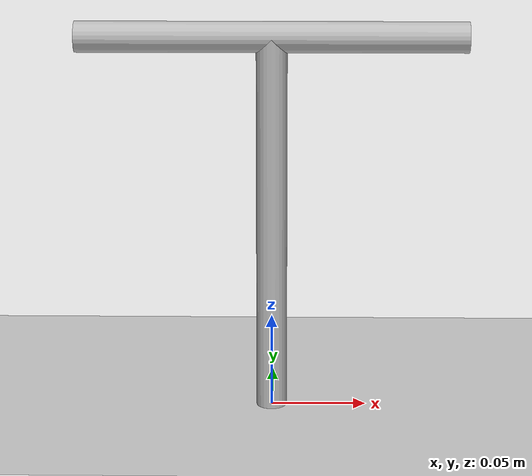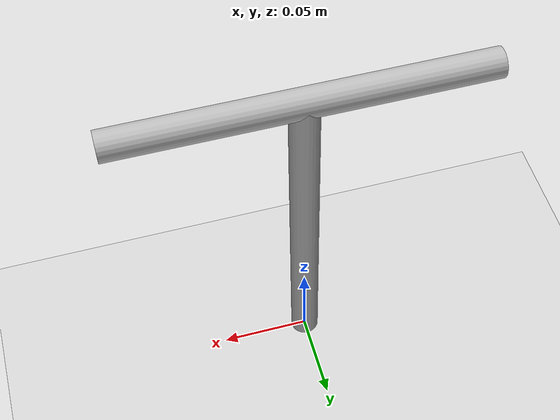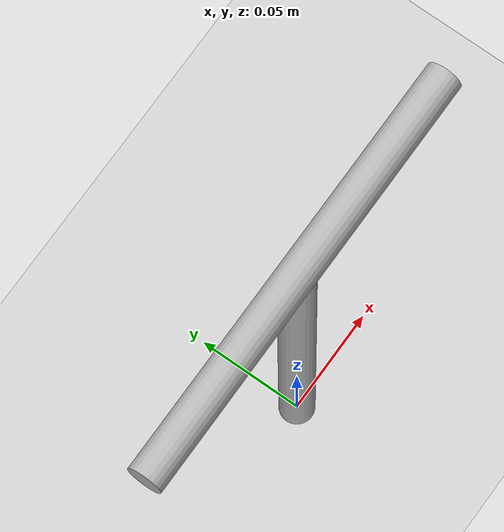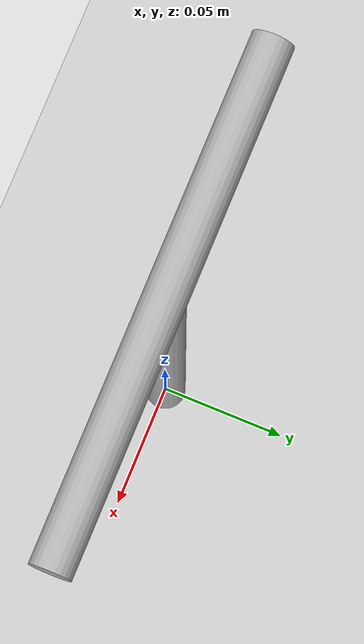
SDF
<sdf version='1.5'>
  <world name='joint_commander_test'>
    <light name='sun' type='directional'>
      <cast_shadows>1</cast_shadows>
      <pose>0 0 10 0 -0 0</pose>
      <diffuse>0.8 0.8 0.8 1</diffuse>
      <specular>0.2 0.2 0.2 1</specular>
      <attenuation>
        <range>1000</range>
        <constant>0.9</constant>
        <linear>0.01</linear>
        <quadratic>0.001</quadratic>
      </attenuation>
      <direction>-0.5 0.1 -0.9</direction>
    </light>
    <model name='ground_plane'>
      <static>1</static>
      <link name='link'>
        <collision name='collision'>
          <geometry>
            <plane>
              <normal>0 0 1</normal>
              <size>100 100</size>
            </plane>
          </geometry>
          <surface>
            <friction>
              <ode>
                <mu>100</mu>
                <mu2>50</mu2>
              </ode>
            </friction>
            <contact>
              <ode/>
            </contact>
            <bounce/>
          </surface>
          <max_contacts>10</max_contacts>
        </collision>
        <visual name='visual'>
          <cast_shadows>0</cast_shadows>
          <geometry>
            <plane>
              <normal>0 0 1</normal>
              <size>100 100</size>
            </plane>
          </geometry>
          <material>
            <script>
              <uri>file://media/materials/scripts/gazebo.material</uri>
              <name>Gazebo/Grey</name>
            </script>
          </material>
        </visual>
        <velocity_decay>
          <linear>0</linear>
          <angular>0</angular>
        </velocity_decay>
        <self_collide>0</self_collide>
        <kinematic>0</kinematic>
        <gravity>1</gravity>
      </link>
    </model>
   <model name="test_joint">
      <pose>0 0 0 0 0 0</pose>
      <link name="first">
        <pose>0 0 0.1 0 0 0</pose>
        <collision name="first_collision">
          <geometry>
            <cylinder>
              <length>0.2</length>
              <radius>0.008</radius>
            </cylinder>
          </geometry>
          <max_contacts>10</max_contacts>
        </collision>
        <visual name="first_visual">
          <pose>0 0 0 0 0 0</pose>
          <geometry>
            <cylinder>
              <length>0.2</length>
              <radius>0.008</radius>
            </cylinder>
          </geometry>
        </visual>
      </link>
      <link name="second">
        <pose>0.0 0.0 0.2 0 1.57 0</pose>
        <collision name="second_collision">
          <geometry>
            <cylinder>
              <length>0.2</length>
              <radius>0.008</radius>
            </cylinder>
          </geometry>
          <max_contacts>10</max_contacts>
        </collision>
        <visual name="second_visual">
          <pose>0 0 0 0 0 0</pose>
          <geometry>
            <cylinder>
              <length>0.2</length>
              <radius>0.008</radius>
            </cylinder>
          </geometry>
        </visual>
      </link>
      <joint name="first_second_joint" type="revolute">
        <parent>first</parent>
        <child>second</child>
        <axis>
          <xyz>0 0 1</xyz>
          <use_parent_model_frame>1</use_parent_model_frame>
        </axis>
      </joint>
      <plugin filename="libgazebo_ros_joint_commander.so" name="joint_commander">
        <robotNamespace>test</robotNamespace>
        <jointSet1>joint_name_1</jointSet1>
        <jointSet1Joint1>first_second_joint</jointSet1Joint1>
      </plugin>
    </model>
    <gui fullscreen='0'>
      <camera name='user_camera'>
        <pose>3.5693 -2.02722 1.67997 -1.48488e-17 0.363643 2.44819</pose>
        <view_controller>orbit</view_controller>
      </camera>
    </gui>
  </world>
</sdf>
